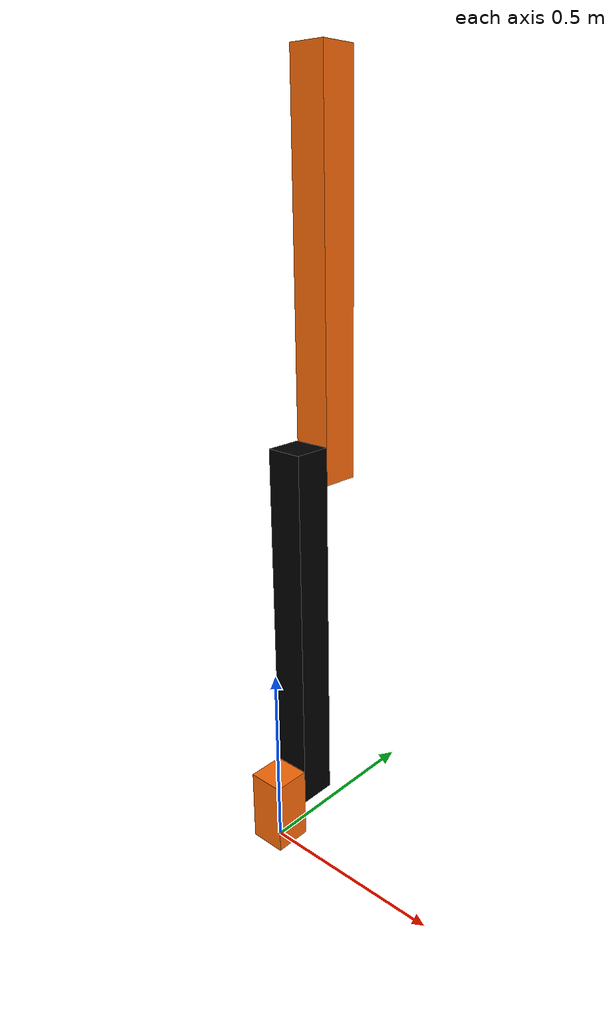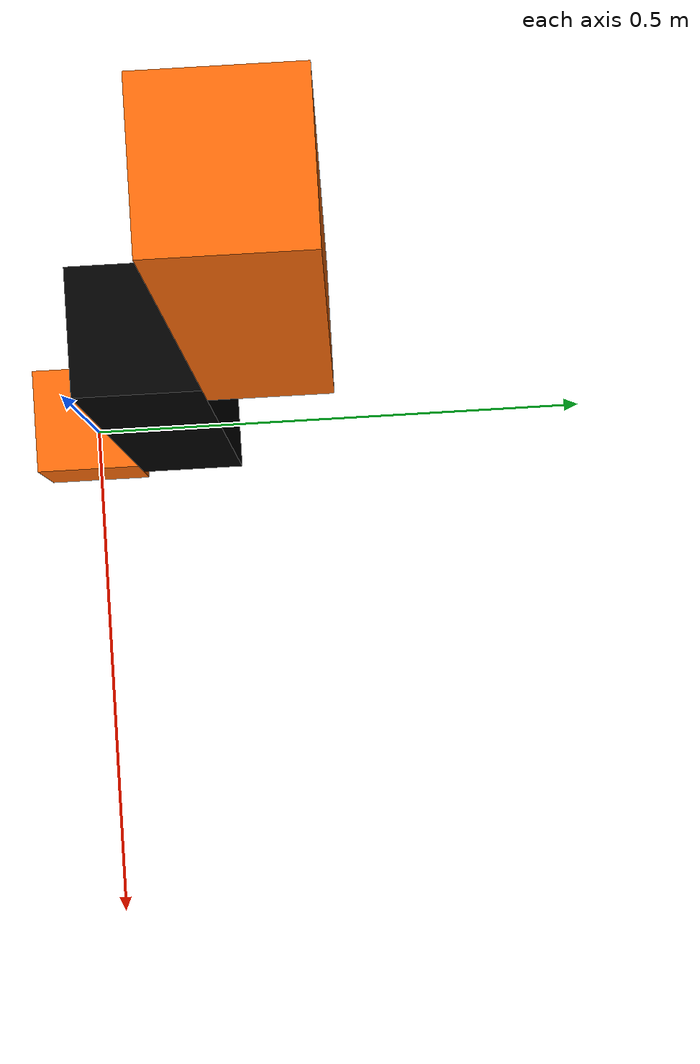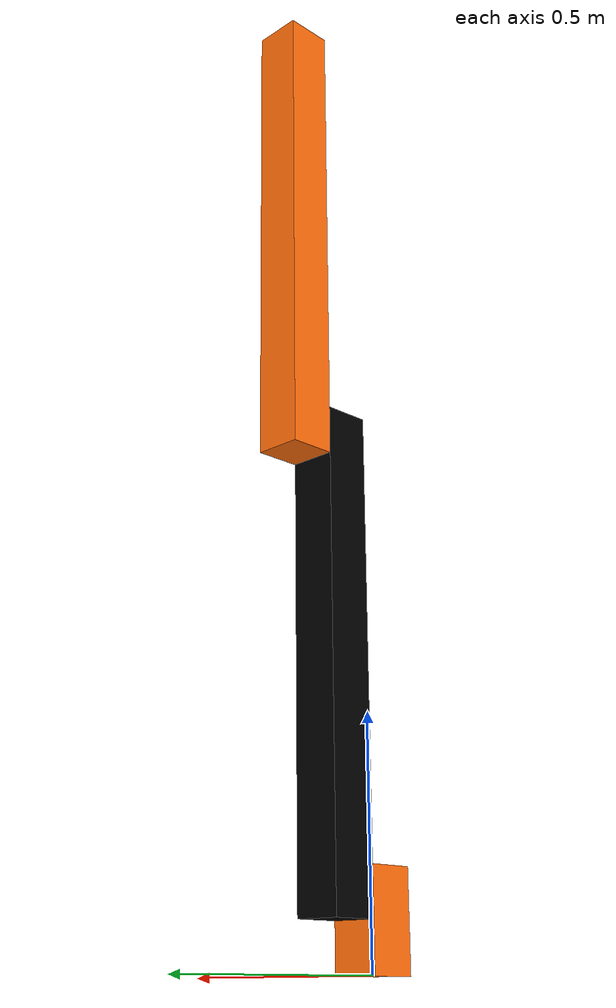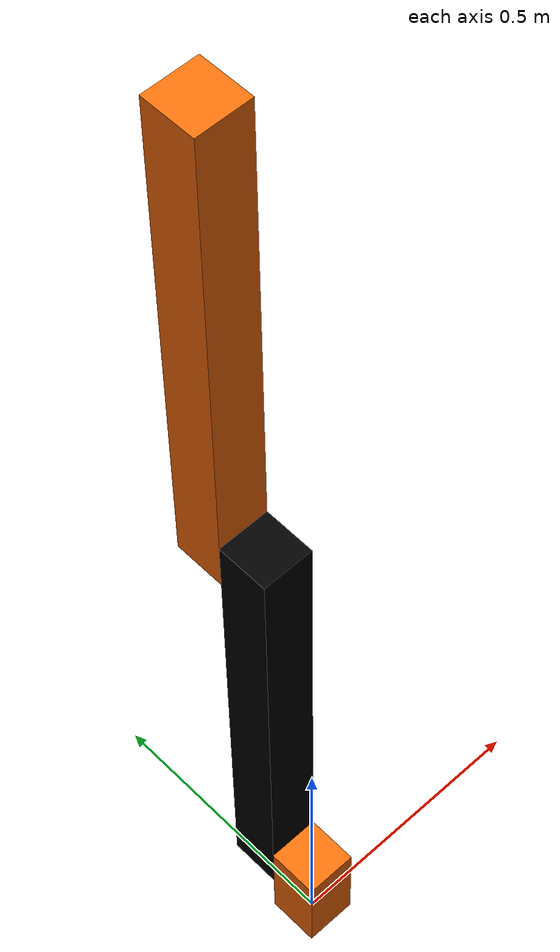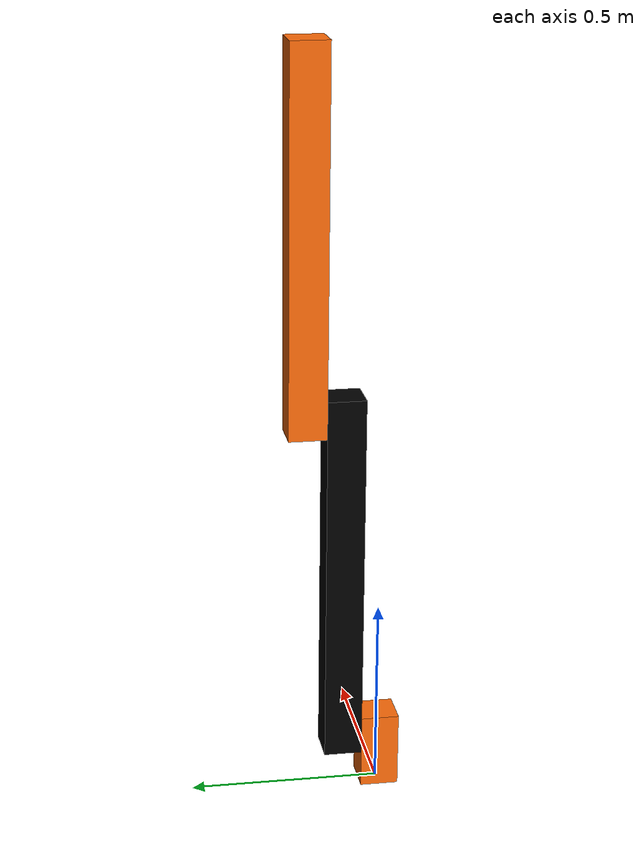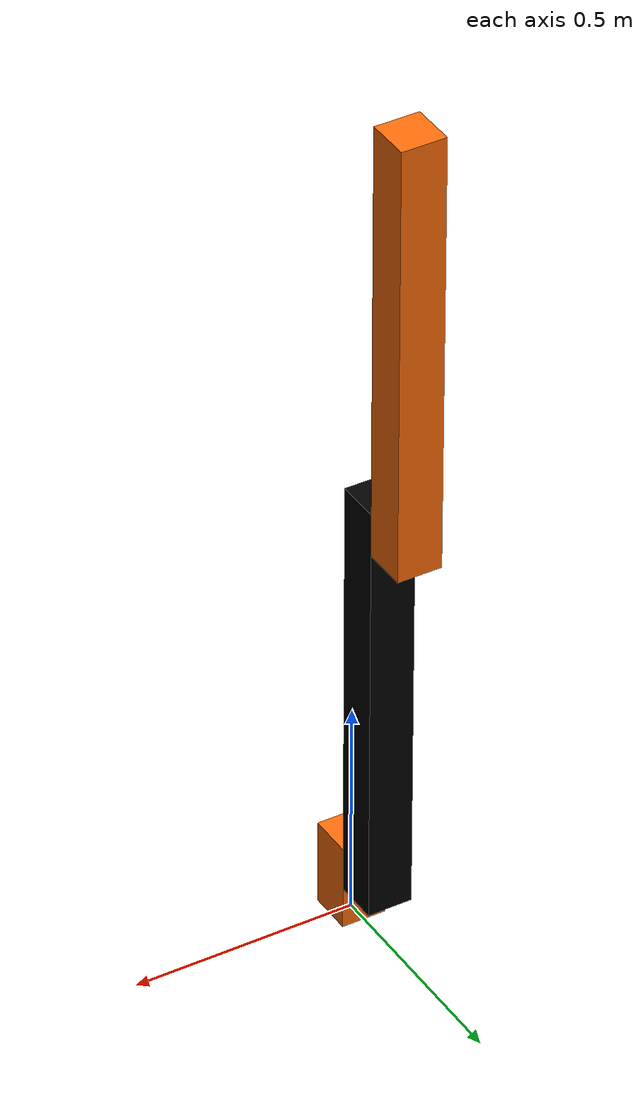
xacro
<?xml version="1.0"?>
<!-- Revolute-Revolute Manipulator -->
<robot name="rrbot" xmlns:xacro="http://www.ros.org/wiki/xacro">

    <!-- Constants for robot dimensions -->
    <xacro:property name="PI" value="3.1415926535897931" />
    <xacro:property name="mass" value="0.1" /> <!-- arbitrary value for mass -->
    <xacro:property name="width" value="0.1" /> <!-- Square dimensions (widthxwidth) of beams -->
    <xacro:property name="height1" value="0.2" /> <!-- Link 1 -->
    <xacro:property name="height2" value="1" /> <!-- Link 2 -->
    <xacro:property name="height3" value="1" /> <!-- Link 3 -->
    <xacro:property name="axel_offset" value="0.05" /> <!-- Space btw top of beam and the each joint -->

    <!-- Define colors -->
    <material name="black">
        <color rgba="0.0 0.0 0.0 1.0" />
    </material>

    <material name="orange">
        <color rgba="${255/255} ${108/255} ${10/255} 1.0" />
    </material>

    <!-- Used for fixing robot to Gazebo 'base_link' -->
    <link name="world" />

    <joint name="joint1" type="continuous">
        <parent link="world" />
        <child link="link1" />
        <axis xyz="0 0 1"/>
    </joint>

    <!-- Base Link -->
    <link name="link1">
        <collision>
            <origin xyz="0 0 ${height1/2}" rpy="0 0 0" />
            <geometry>
                <box size="${width} ${width} ${height1}" />
            </geometry>
        </collision>

        <visual>
            <origin xyz="0 0 ${height1/2}" rpy="0 0 0" />
            <geometry>
                <box size="${width} ${width} ${height1}" />
            </geometry>
            <material name="orange" />
        </visual>

        <inertial>
            <origin xyz="0 0 ${height1/2}" rpy="0 0 0" />
            <mass value="${mass}" />
            <inertia
                ixx="${mass / 12.0 * (width*width + height1*height1)}" ixy="0.0" ixz="0.0"
                iyy="${mass / 12.0 * (height1*height1 + width*width)}" iyz="0.0"
                izz="${mass / 12.0 * (width*width + width*width)}" />
        </inertial>
    </link>

    <joint name="joint2" type="continuous">
        <parent link="link1" />
        <child link="link2" />
        <origin xyz="0 ${width} ${height1 - axel_offset}" rpy="0 0 0" />
        <axis xyz="0 1 0" />
        <dynamics damping="0.7" />
    </joint>

    <!-- Middle Link -->
    <link name="link2">
        <collision>
            <origin xyz="0 0 ${height2/2 - axel_offset}" rpy="0 0 0" />
            <geometry>
                <box size="${width} ${width} ${height2}" />
            </geometry>
        </collision>

        <visual>
            <origin xyz="0 0 ${height2/2 - axel_offset}" rpy="0 0 0" />
            <geometry>
                <box size="${width} ${width} ${height2}" />
            </geometry>
            <material name="black" />
        </visual>

        <inertial>
            <origin xyz="0 0 ${height2/2 - axel_offset}" rpy="0 0 0" />
            <mass value="${mass}" />
            <inertia
                ixx="${mass / 12.0 * (width*width + height2*height2)}" ixy="0.0" ixz="0.0"
                iyy="${mass / 12.0 * (height2*height2 + width*width)}" iyz="0.0"
                izz="${mass / 12.0 * (width*width + width*width)}" />
        </inertial>
    </link>

    <joint name="joint3" type="continuous">
        <parent link="link2" />
        <child link="link3" />
        <origin xyz="0 ${width} ${height2 - axel_offset*2}" rpy="0 0 0" />
        <axis xyz="0 1 0" />
        <dynamics damping="0.7" />
    </joint>

    <!-- Top Link -->
    <link name="link3">
        <collision>
            <origin xyz="0 0 ${height3/2 - axel_offset}" rpy="0 0 0" />
            <geometry>
                <box size="${width} ${width} ${height3}" />
            </geometry>
        </collision>

        <visual>
            <origin xyz="0 0 ${height3/2 - axel_offset}" rpy="0 0 0" />
            <geometry>
                <box size="${width} ${width} ${height3}" />
            </geometry>
            <material name="orange" />
        </visual>

        <inertial>
            <origin xyz="0 0 ${height3/2 - axel_offset}" rpy="0 0 0" />
            <mass value="${mass}" />
            <inertia
                ixx="${mass / 12.0 * (width*width + height3*height3)}" ixy="0.0" ixz="0.0"
                iyy="${mass / 12.0 * (height3*height3 + width*width)}" iyz="0.0"
                izz="${mass / 12.0 * (width*width + width*width)}" />
        </inertial>
    </link>

    <!-- Gazebo colors and frictions -->
    <!-- Link1 -->
    <gazebo reference="link1">
        <material>
            <diffuse> 1 0.423529412 0.039215686 1</diffuse>
            <ambient> 1 0.423529412 0.039215686 1</ambient>
            <specular>1 0.423529412 0.039215686 1</specular>
        </material>
    </gazebo>

    <!-- Link2 -->
    <gazebo reference="link2">
        <mu1>0.2</mu1>
        <mu2>0.2</mu2>
        <material>
            <diffuse> 0 0 0 1</diffuse>
            <ambient> 0 0 0 1</ambient>
            <specular>0 0 0 1</specular>
        </material>
    </gazebo>

    <!-- Link3 -->
    <gazebo reference="link3">
        <mu1>0.2</mu1>
        <mu2>0.2</mu2>
        <material>
            <diffuse> 1 0.423529412 0.039215686 1</diffuse>
            <ambient> 1 0.423529412 0.039215686 1</ambient>
            <specular>1 0.423529412 0.039215686 1</specular>
        </material>
    </gazebo>

    <!-- Joint states plugin -->
    <xacro:include filename="gazebo.xacro" />
</robot>
